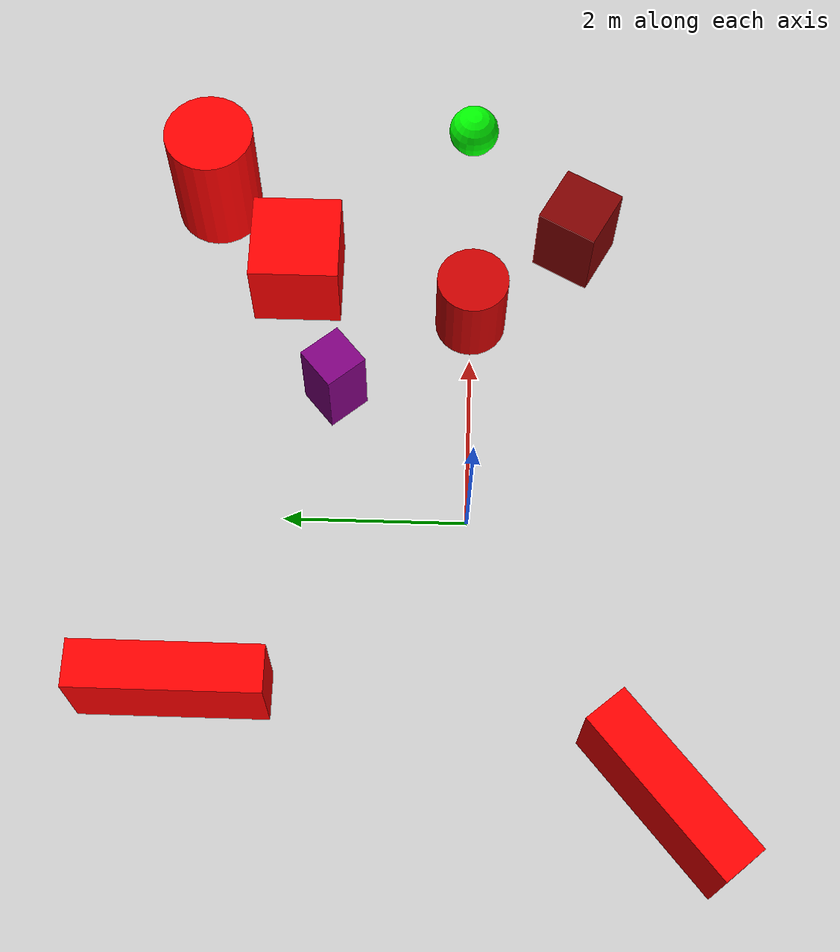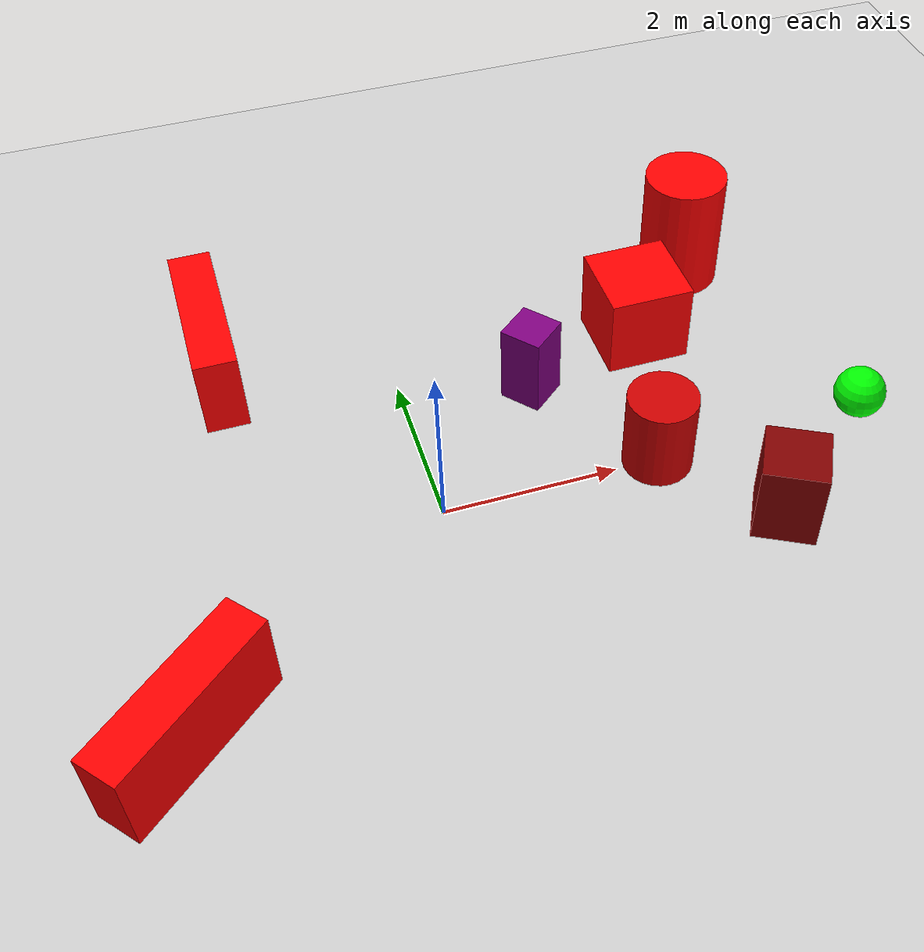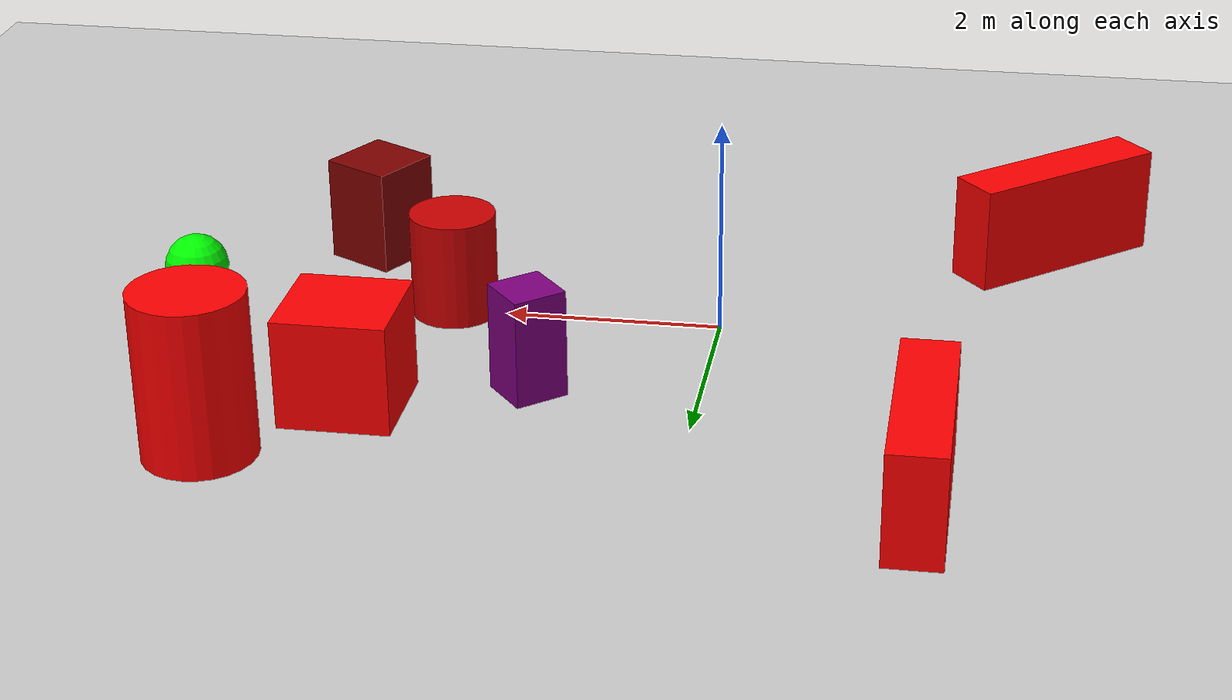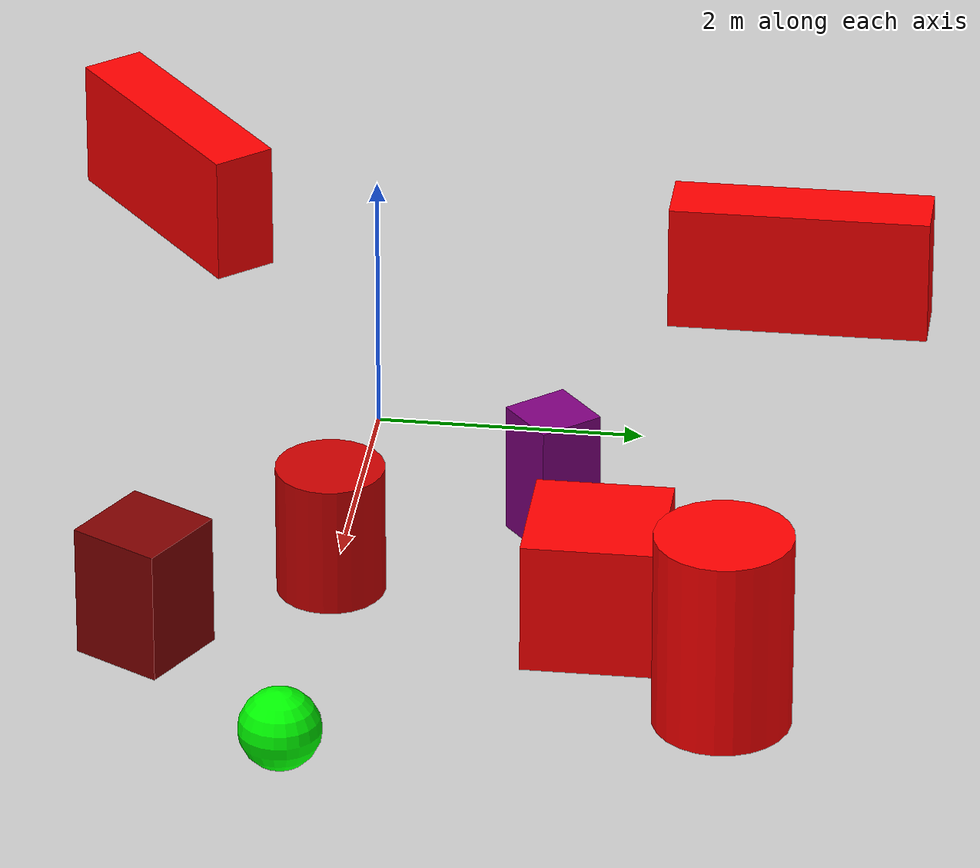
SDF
<?xml version="1.0" ?>
<sdf version="1.8">
  <world name="rl_training_world">

    <!-- Physics -->
    <physics name="1ms" type="ignored">
      <max_step_size>0.001</max_step_size>
      <real_time_factor>1.0</real_time_factor>
    </physics>

    <plugin filename="gz-sim-physics-system" name="gz::sim::systems::Physics"/>
    <plugin filename="gz-sim-user-commands-system" name="gz::sim::systems::UserCommands"/>
    <plugin filename="gz-sim-scene-broadcaster-system" name="gz::sim::systems::SceneBroadcaster"/>

    <!-- Lighting -->
    <light type="directional" name="sun">
      <cast_shadows>true</cast_shadows>
      <pose>0 0 10 0 0 0</pose>
      <diffuse>0.8 0.8 0.8 1</diffuse>
      <specular>0.2 0.2 0.2 1</specular>
      <attenuation>
        <range>1000</range>
        <constant>0.9</constant>
        <linear>0.01</linear>
        <quadratic>0.001</quadratic>
      </attenuation>
      <direction>-0.5 0.1 -0.9</direction>
    </light>

    <!-- Ground Plane -->
    <model name="ground_plane">
      <static>true</static>
      <link name="link">
        <collision name="collision">
          <geometry>
            <plane>
              <normal>0 0 1</normal>
              <size>100 100</size>
            </plane>
          </geometry>
        </collision>
        <visual name="visual">
          <geometry>
            <plane>
              <normal>0 0 1</normal>
              <size>100 100</size>
            </plane>
          </geometry>
          <material>
            <ambient>0.8 0.8 0.8 1</ambient>
            <diffuse>0.8 0.8 0.8 1</diffuse>
          </material>
        </visual>
      </link>
    </model>

    <!-- Random Obstacles (Boxes) -->
    <model name="obstacle_1">
      <pose>3 2 0.5 0 0 0</pose>
      <static>true</static>
      <link name="link">
        <collision name="collision">
          <geometry>
            <box><size>1 1 1</size></box>
          </geometry>
        </collision>
        <visual name="visual">
          <geometry>
            <box><size>1 1 1</size></box>
          </geometry>
          <material>
            <ambient>1 0 0 1</ambient>
            <diffuse>1 0 0 1</diffuse>
          </material>
        </visual>
      </link>
    </model>

    <model name="obstacle_2">
      <pose>-2 3 0.5 0 0 0</pose>
      <static>true</static>
      <link name="link">
        <collision name="collision">
          <geometry>
            <box><size>0.5 2 1</size></box>
          </geometry>
        </collision>
        <visual name="visual">
          <geometry>
            <box><size>0.5 2 1</size></box>
          </geometry>
          <material>
            <ambient>1 0 0 1</ambient>
            <diffuse>1 0 0 1</diffuse>
          </material>
        </visual>
      </link>
    </model>

    <model name="obstacle_3">
      <pose>4 3 0.75 0 0 0</pose>
      <static>true</static>
      <link name="link">
        <collision name="collision">
          <geometry>
            <cylinder><radius>0.5</radius><length>1.5</length></cylinder>
          </geometry>
        </collision>
        <visual name="visual">
          <geometry>
            <cylinder><radius>0.5</radius><length>1.5</length></cylinder>
          </geometry>
          <material>
            <ambient>1 0 0 1</ambient>
            <diffuse>1 0 0 1</diffuse>
          </material>
        </visual>
      </link>
    </model>

    <model name="obstacle_4">
      <pose>-3 -2 0.5 0 0 0.7</pose>
      <static>true</static>
      <link name="link">
        <collision name="collision">
          <geometry>
            <box><size>2 0.5 1</size></box>
          </geometry>
        </collision>
        <visual name="visual">
          <geometry>
            <box><size>2 0.5 1</size></box>
          </geometry>
          <material>
            <ambient>1 0 0 1</ambient>
            <diffuse>1 0 0 1</diffuse>
          </material>
        </visual>
      </link>
    </model>

    <model name="obstacle_4_blocking">
      <pose>2.5 0 0.5 0 0 0</pose>
      <static>true</static>
      <link name="link">
        <collision name="collision">
          <geometry>
            <cylinder><radius>0.4</radius><length>1.0</length></cylinder>
          </geometry>
        </collision>
        <visual name="visual">
          <geometry>
            <cylinder><radius>0.4</radius><length>1.0</length></cylinder>
          </geometry>
          <material>
            <ambient>0.8 0 0 1</ambient>
            <diffuse>0.8 0 0 1</diffuse>
          </material>
        </visual>
      </link>
    </model>

    <model name="obstacle_5_clutter">
      <pose>1.5 1.5 0.5 0 0 0.7</pose>
      <static>true</static>
      <link name="link">
        <collision name="collision">
          <geometry>
            <box><size>0.5 0.5 1</size></box>
          </geometry>
        </collision>
        <visual name="visual">
          <geometry>
            <box><size>0.5 0.5 1</size></box>
          </geometry>
          <material>
            <ambient>0.5 0 0.5 1</ambient>
            <diffuse>0.5 0 0.5 1</diffuse>
          </material>
        </visual>
      </link>
    </model>

    <model name="obstacle_6_clutter">
      <pose>3.5 -1.2 0.5 0 0 -0.5</pose>
      <static>true</static>
      <link name="link">
        <collision name="collision">
          <geometry>
            <box><size>0.7 0.7 1</size></box>
          </geometry>
        </collision>
        <visual name="visual">
          <geometry>
            <box><size>0.7 0.7 1</size></box>
          </geometry>
          <material>
            <ambient>0.5 0 0 1</ambient>
            <diffuse>0.5 0 0 1</diffuse>
          </material>
        </visual>
      </link>
    </model>

    <!-- Goal Marker (Green Sphere) -->
    <model name="goal_marker">
      <pose>5 0 0.3 0 0 0</pose>
      <static>true</static>
      <link name="link">
        <visual name="visual">
          <geometry>
            <sphere><radius>0.3</radius></sphere>
          </geometry>
          <material>
            <ambient>0 1 0 1</ambient>
            <diffuse>0 1 0 1</diffuse>
          </material>
        </visual>
      </link>
    </model>

  </world>
</sdf>
